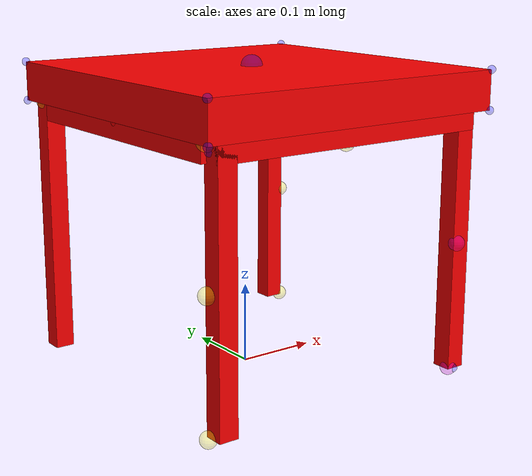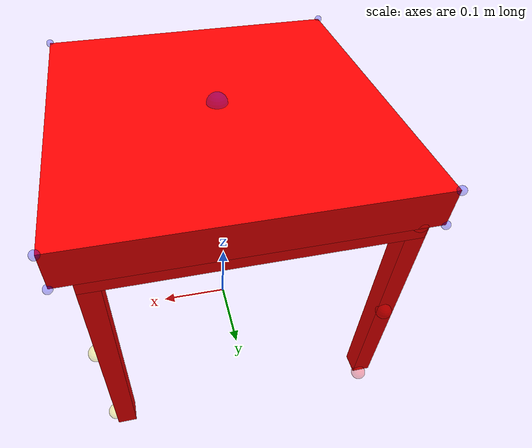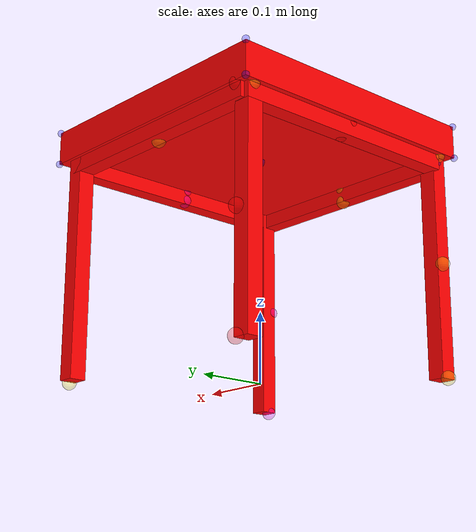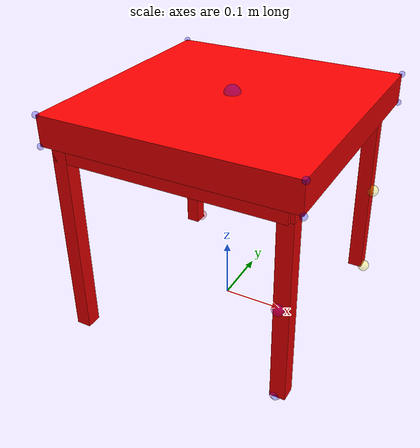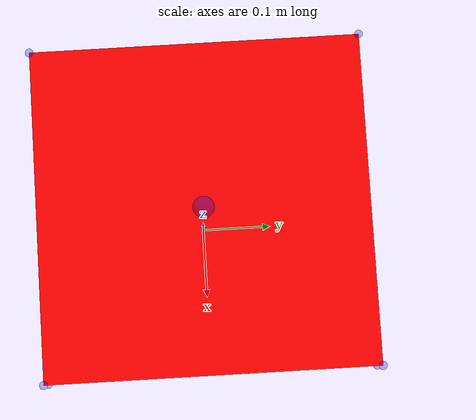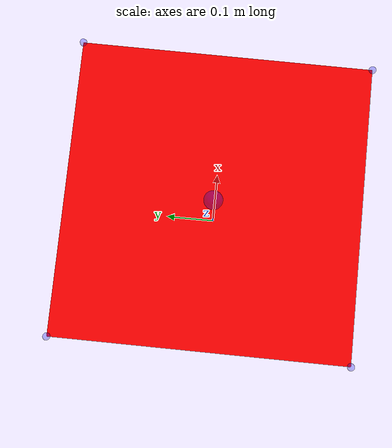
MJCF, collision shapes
<mujoco model="table_klubbo_0743">
    <asset>
        <mesh file="table_klubbo_0743/leg1.stl" name="table_leg1" scale="0.0002 0.0002 0.0002" />
        <mesh file="table_klubbo_0743/leg2.stl" name="table_leg2" scale="0.0002 0.0002 0.0002" />
        <mesh file="table_klubbo_0743/leg3.stl" name="table_leg3" scale="0.0002 0.0002 0.0002" />
        <mesh file="table_klubbo_0743/leg4.stl" name="table_leg4" scale="0.0002 0.0002 0.0002" />
        <mesh file="table_klubbo_0743/table_top.stl" name="table_top" scale="0.0002 0.0002 0.0002" />
        <texture file="../textures/light-wood.png" name="tex-light-wood" type="2d" />
        <material name="light-wood" reflectance="0.5" texrepeat="20 20" texture="tex-light-wood" texuniform="true" />
    </asset>
    <equality>
        <weld active="false" body1="1_table_leg1" body2="5_table_top" solimp="1 1 0.5" solref="0.01 0.3" />
        <weld active="false" body1="2_table_leg2" body2="5_table_top" solimp="1 1 0.5" solref="0.01 0.3" />
        <weld active="false" body1="3_table_leg3" body2="5_table_top" solimp="1 1 0.5" solref="0.01 0.3" />
        <weld active="false" body1="4_table_leg4" body2="5_table_top" solimp="1 1 0.5" solref="0.01 0.3" />
    </equality>
    <worldbody>
        <body name="1_part1" pos="-0.155 0.007 0.166">
            <geom conaffinity="0" contype="0" density="0" material="light-wood" mesh="table_leg1" name="1_table_leg1_geom" pos="0.0 0.0 0.0" rgba="0.82 0.71 0.55 1" solref="0.001 1" type="mesh" />
            <geom density="50" euler="0 0 0" name="noviz_collision_1_table_leg1_1" pos="-0.015 0.17 0.0" rgba="1 0 0 1" size="0.012 0.012 0.16" solref="0.001 1" type="box" />
            <geom density="50" euler="0 0 0" name="noviz_collision_1_table_leg1_2" pos="-0.015 0.0 0.15" rgba="1 0 0 1" size="0.012 0.182 0.012" solref="0.001 1" type="box" />
            <site group="0" name="leg1-table1,0,conn_site" pos="-0.01 0.0 0.16" rgba="1 0 0 0.3" size="0.01" />
            <site group="0" name="leg1-table2,0,conn_site_fake1" pos="-0.01 0.185 0.16" rgba="1 0 0 0.3" size="0.01" />
            <site group="0" name="leg1-table3,0,conn_site_fake2" pos="-0.01 -0.185 0.16" rgba="1 0 0 0.3" size="0.01" />
            <site group="0" name="leg1-table4,0,conn_site_fake3" pos="-0.01 0.185 0" rgba="1 0 0 0.3" size="0.01" />
            <site group="0" name="leg1-table5,0,conn_site_fake4" pos="-0.01 0.185 -0.16" rgba="1 0 0 0.3" size="0.01" />
            <site group="0" name="leg1-table6,0,conn_site_fake5" pos="-0.01 0.0 0.145" rgba="1 0 0 0.3" size="0.01" />

            <site name="1_table_leg1_corner_site1" pos="-0.012 -0.182 0.15" rgba="0 0 1 0.3" size="0.005" />
            <site name="1_table_leg1_corner_site2" pos="-0.012 0.182 0.15" rgba="0 0 1 0.3" size="0.005" />
            <site name="1_table_leg1_corner_site3" pos="-0.012 0.182 -0.16" rgba="0 0 1 0.3" size="0.005" />
            <site name="1_table_leg1_bottom_site" pos="-0.012 0.182 -0.16" rgba="0 0 1 0" size="0.0232" />
            <site name="1_table_leg1_top_site" pos="-0.012 0.0 0.15" rgba="0 0 1 0" size="0.0232" />
            <site name="1_table_leg1_horizontal_radius_site" pos="-0.012 0.0 0.0" rgba="0 0 1 0" size="0.14" />
        </body>
        <body name="2_part2" pos="0.007 0.168 0.1666" quat="1 0 0 0">
            <geom conaffinity="0" contype="0" density="0" material="light-wood" mesh="table_leg2" name="table_leg2_geom" pos="0.0 0.0 0.0" rgba="0.82 0.71 0.55 1" solref="0.001 1" type="mesh" />
            <geom density="50" euler="0 0 0" name="noviz_collision_2_table_leg2_1" pos="0.17 0.015 0.0" rgba="1 0 0 1" size="0.012 0.012 0.16" solref="0.001 1" type="box" />
            <geom density="50" euler="0 0 0" name="noviz_collision_2_table_leg2_2" pos="0.0 0.015 0.15" rgba="1 0 0 1" size="0.182 0.012 0.012" solref="0.001 1" type="box" />
            <site group="0" name="leg2-table1,0,conn_site" pos="0.0 0.01 0.16" rgba="1 1 0 0.3" size="0.01" />
            <site group="0" name="leg2-table2,0,conn_site_fake1" pos="0.185 0.01 0.0" rgba="1 1 0 0.3" size="0.01" />
            <site group="0" name="leg2-table3,0,conn_site_fake2" pos="-0.185 0.01 0.16" rgba="1 1 0 0.3" size="0.01" />
            <site group="0" name="leg2-table4,0,conn_site_fake3" pos="0.185 0.01 0.16" rgba="1 1 0 0.3" size="0.01" />
            <site group="0" name="leg2-table5,0,conn_site_fake4" pos="0.185 0.01 -0.16" rgba="1 1 0 0.3" size="0.01" />
            <site group="0" name="leg2-table6,0,conn_site_fake5" pos="0.0 0.01 0.14" rgba="1 1 0 0.3" size="0.01" />

            <site name="2_table_leg2_corner_site1" pos="0.182 0.012 0.15" rgba="0 0 1 0.3" size="0.005" />
            <site name="2_table_leg2_corner_site2" pos="-0.182 0.012 0.15" rgba="0 0 1 0.3" size="0.005" />
            <site name="2_table_leg2_corner_site3" pos="0.182 0.012 -0.16" rgba="0 0 1 0.3" size="0.005" />
            <site name="2_table_leg2_bottom_site" pos="0.182 0.012 -0.16" rgba="0 0 1 0" size="0.0232" />
            <site name="2_table_leg2_top_site" pos="0.0 0.012 0.15" rgba="0 0 1 0" size="0.0232" />
            <site name="2_table_leg2_horizontal_radius_site" pos="0.0 0.012 0.0" rgba="0 0 1 0" size="0.14" />
        </body>
        <body name="3_part3" pos="0.168 -0.007 0.1666" quat="1 0 0 0">
            <geom conaffinity="0" contype="0" density="0" material="light-wood" mesh="table_leg3" name="table_leg3_geom" pos="0.0 0.0 0.0" rgba="0.82 0.71 0.55 1" solref="0.001 1" type="mesh" />
            <geom density="50" euler="0 0 0" name="noviz_collision_3_table_leg3_1" pos="0.015 -0.17 0.0" rgba="1 0 0 1" size="0.012 0.012 0.16" solref="0.001 1" type="box" />
            <geom density="50" euler="0 0 0" name="noviz_collision_3_table_leg3_2" pos="0.015 0.0 0.15" rgba="1 0 0 1" size="0.012 0.182 0.012" solref="0.001 1" type="box" />
            <site group="0" name="leg3-table1,0,conn_site" pos="0.01 0.0 0.16" rgba="1 0 1 0.3" size="0.01" />
            <site group="0" name="leg3-table2,0,conn_site_fake1" pos="0.01 0.175 0.16" rgba="1 0 1 0.3" size="0.01" />
            <site group="0" name="leg3-table3,0,conn_site_fake2" pos="0.01 -0.175 0.16" rgba="1 0 1 0.3" size="0.01" />
            <site group="0" name="leg3-table4,0,conn_site_fake3" pos="0.01 -0.175 -0.16" rgba="1 0 1 0.3" size="0.01" />
            <site group="0" name="leg3-table5,0,conn_site_fake4" pos="0.01 -0.18 0.0" rgba="1 0 1 0.3" size="0.01" />
            <site group="0" name="leg3-table6,0,conn_site_fake5" pos="0.01 0.0 0.145" rgba="1 0 1 0.3" size="0.01" />
            <site name="3_table_leg3_corner_site1" pos="0.012 -0.182 0.15" rgba="0 0 1 0.3" size="0.005" />
            <site name="3_table_leg3_corner_site2" pos="0.012 0.182 0.15" rgba="0 0 1 0.3" size="0.005" />
            <site name="3_table_leg3_corner_site3" pos="0.012 -0.182 -0.16" rgba="0 0 1 0.3" size="0.005" />
            <site name="3_table_leg3_bottom_site" pos="0.012 -0.182 -0.16" rgba="0 0 1 0" size="0.0232" />
            <site name="3_table_leg3_top_site" pos="0.012 0.0 0.15" rgba="0 0 1 0" size="0.0232" />
            <site name="3_table_leg3_horizontal_radius_site" pos="0.012 0.0 0.0" rgba="0 0 1 0" size="0.14" />
        </body>
        <body name="4_part4" pos="0.007 -0.168 0.1666" quat="1 0 0 0">
            <geom conaffinity="0" contype="0" density="0" material="light-wood" mesh="table_leg4" name="table_leg4_geom" pos="0.0 0.0 0.0" rgba="0.82 0.71 0.55 1" solref="0.001 1" type="mesh" />
            <geom density="50" euler="0 0 0" name="noviz_collision_4_table_leg4_1" pos="-0.17 -0.015 0.0" rgba="1 0 0 1" size="0.012 0.012 0.16" solref="0.001 1" type="box" />
            <geom density="50" euler="0 0 0" name="noviz_collision_4_table_leg4_2" pos="0.0 -0.015 0.15" rgba="1 0 0 1" size="0.182 0.012 0.012" solref="0.001 1" type="box" />
            <site group="0" name="leg4-table1,0,conn_site" pos="0.0 -0.01 0.16" rgba="1 1 0 0.3" size="0.01" />
            <site group="0" name="leg4-table2,0,conn_site_fake1" pos="-0.185 -0.01 0.0" rgba="1 1 0 0.3" size="0.01" />
            <site group="0" name="leg4-table3,0,conn_site_fake2" pos="-0.185 -0.01 0.16" rgba="1 1 0 0.3" size="0.01" />
            <site group="0" name="leg4-table4,0,conn_site_fake3" pos="0.185 -0.01 0.16" rgba="1 1 0 0.3" size="0.01" />
            <site group="0" name="leg4-table5,0,conn_site_fake4" pos="-0.185 -0.01 -0.16" rgba="1 1 0 0.3" size="0.01" />
            <site group="0" name="leg4-table6,0,conn_site_fake5" pos="0.0 -0.01 0.14" rgba="1 1 0 0.3" size="0.01" />
            <site name="4_table_leg4_corner_site1" pos="-0.182 -0.012 0.15" rgba="0 0 1 0.3" size="0.005" />
            <site name="4_table_leg4_corner_site2" pos="0.182 -0.012 0.15" rgba="0 0 1 0.3" size="0.005" />
            <site name="4_table_leg4_corner_site3" pos="-0.182 -0.012 -0.16" rgba="0 0 1 0.3" size="0.005" />
            <site name="4_table_leg4_bottom_site" pos="-0.182 -0.012 -0.16" rgba="0 0 1 0" size="0.0232" />
            <site name="4_table_leg4_top_site" pos="0.0 -0.012 0.15" rgba="0 0 1 0" size="0.0232" />
            <site name="4_table_leg4_horizontal_radius_site" pos="0.0 -0.012 0.0" rgba="0 0 1 0" size="0.14" />
        </body>
        <body name="5_part5" pos="0.01 0.0 0.35" quat="1 0 0 0">
            <geom conaffinity="0" contype="0" density="0" material="light-wood" mesh="table_top" name="table_top_geom" pos="0.0 0.0 0.0" rgba="0.82 0.71 0.55 1" solref="0.001 1" type="mesh" />
            <geom density="200" euler="0 0 0" name="noviz_collision_5_table_top_1" pos="0.0 0.0 0.0" rgba="1 0 0 1" size="0.2 0.2 0.024" solref="0.001 1" type="box" />
            <site group="0" name="table-leg1,0,conn_site" pos="-0.184 0.0 -0.025" rgba="1 0 0 0.3" size="0.01" />
            <site group="0" name="table-leg2,0,conn_site" pos="0.0 0.184 -0.025" rgba="0 1 1 0.3" size="0.01" />
            <site group="0" name="table-leg3,0,conn_site" pos="0.184 -0.012 -0.025" rgba="1 0 1 0.3" size="0.01" />
            <site group="0" name="table-leg4,0,conn_site" pos="0.0 -0.184 -0.025" rgba="1 1 0 0.3" size="0.01" />
            <site group="0" name="table-leg5,0,conn_site_fake1" pos="0.0 0.0 -0.025" rgba="1 1 0 0.3" size="0.01" />
            <site group="0" name="table-leg6,0,conn_site_fake2" pos="0.0 0.0 0.025" rgba="1 1 0 0.3" size="0.01" />
            <site name="5_table_top_corner_site1" pos="-0.2 -0.2 -0.024" rgba="0 0 1 0.3" size="0.005" />
            <site name="5_table_top_corner_site2" pos="-0.2 0.2 -0.024" rgba="0 0 1 0.3" size="0.005" />
            <site name="5_table_top_corner_site3" pos="0.2 -0.2 -0.024" rgba="0 0 1 0.3" size="0.005" />
            <site name="5_table_top_corner_site4" pos="0.2 0.2 -0.024" rgba="0 0 1 0.3" size="0.005" />
            <site name="5_table_top_corner_site5" pos="-0.2 -0.2 0.024" rgba="0 0 1 0.3" size="0.005" />
            <site name="5_table_top_corner_site6" pos="-0.2 0.2 0.024" rgba="0 0 1 0.3" size="0.005" />
            <site name="5_table_top_corner_site7" pos="0.2 -0.2 0.024" rgba="0 0 1 0.3" size="0.005" />
            <site name="5_table_top_corner_site8" pos="0.2 0.2 0.024" rgba="0 0 1 0.3" size="0.005" />

            <site name="5_table_top_bottom_site" pos="0.0 0.0 -0.024" rgba="0 0 1 0.3" size="0.0132" />
            <site name="5_table_top_top_site" pos="0.0 0.0 0.024" rgba="0 0 1 0.3" size="0.0132" />
            <site name="5_table_top_horizontal_radius_site" pos="0.0 0.0 0.0" rgba="0 0 1 0" size="0.2" />
        </body>
    </worldbody>
</mujoco>
